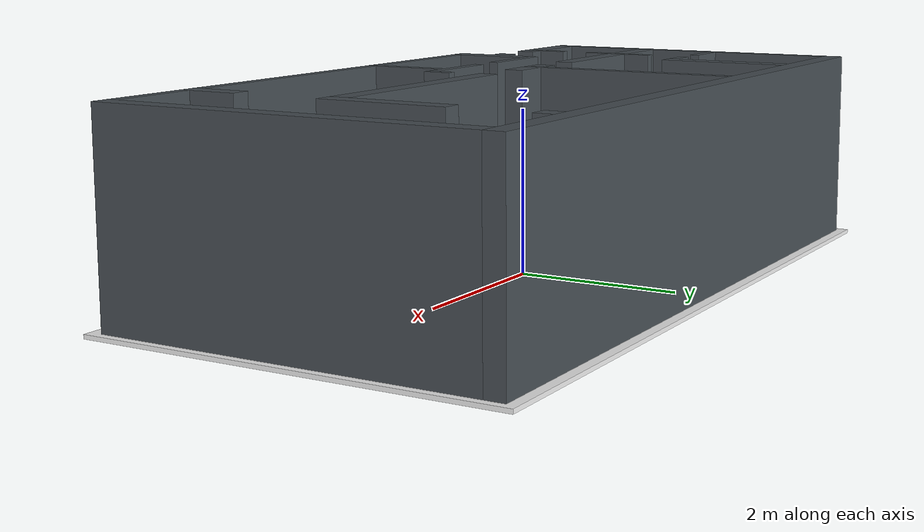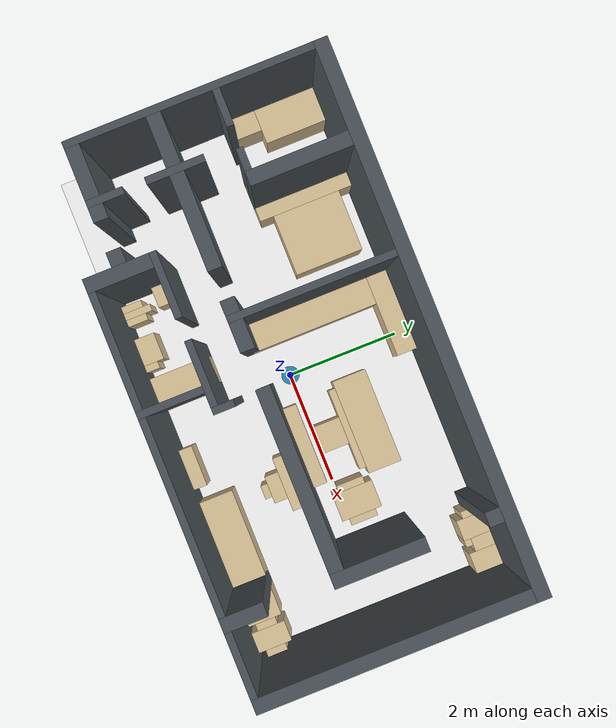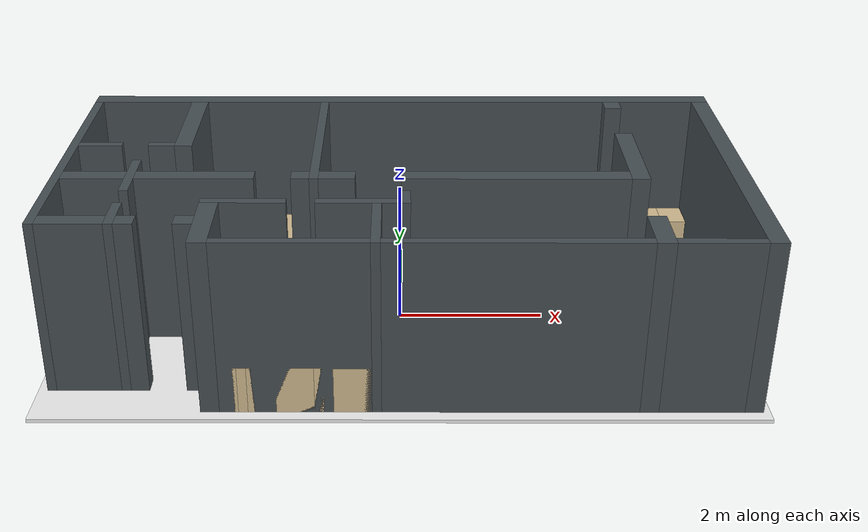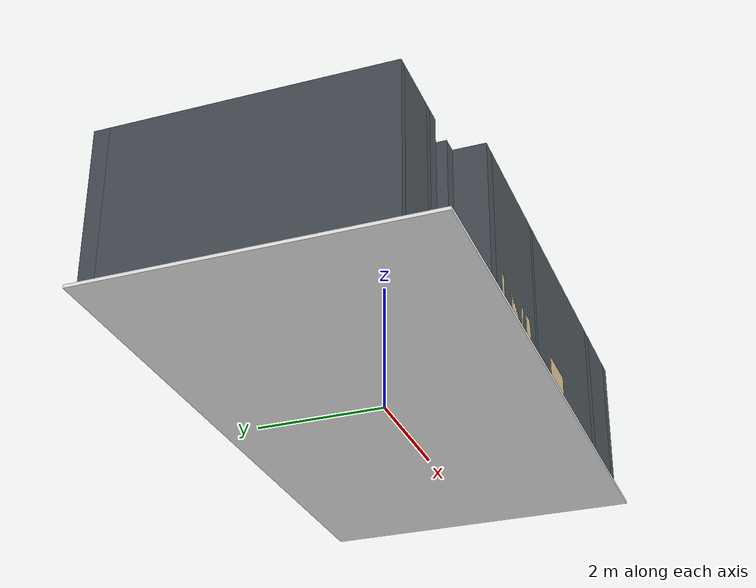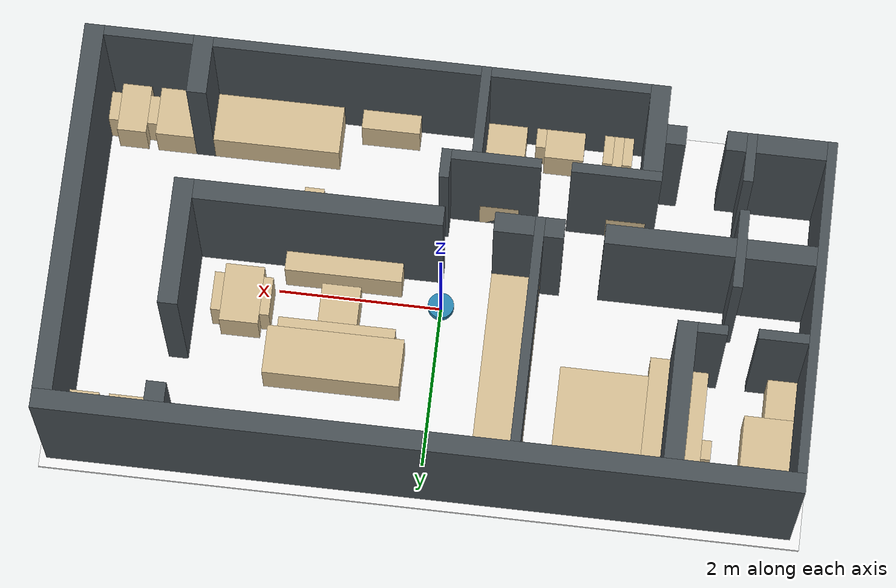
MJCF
<mujoco model='svg_scene_builder'>
  <compiler angle='radian'/>
  <option timestep='0.02' gravity='0 0 -9.81'/>
  <worldbody>
    <light name='sun' pos='0 0 8' dir='0 0 -1'/>
    <geom name='floor' type='box' pos='0 0 -0.0250' size='4.6650 2.5400 0.0250' rgba='0.95 0.95 0.95 1'/>
    <geom name='wall_000' type='box' pos='0.0150 2.3000 1.2000' size='4.5600 0.1200 1.2000' rgba='0.28 0.31 0.33 1'/>
    <geom name='wall_001' type='box' pos='-4.4850 0.1400 1.2000' size='0.0600 2.0400 1.2000' rgba='0.28 0.31 0.33 1'/>
    <geom name='wall_002' type='box' pos='-2.9850 1.3400 1.2000' size='0.1200 0.8400 1.2000' rgba='0.28 0.31 0.33 1'/>
    <geom name='wall_003' type='box' pos='-1.1250 0.8000 1.2000' size='0.0600 1.3800 1.2000' rgba='0.28 0.31 0.33 1'/>
    <geom name='wall_004' type='box' pos='3.1350 2.0600 1.2000' size='0.1200 0.1200 1.2000' rgba='0.28 0.31 0.33 1'/>
    <geom name='wall_005' type='box' pos='4.4550 -0.1000 1.2000' size='0.1200 2.2800 1.2000' rgba='0.28 0.31 0.33 1'/>
    <geom name='wall_006' type='box' pos='3.1350 0.2000 1.2000' size='0.1200 0.7800 1.2000' rgba='0.28 0.31 0.33 1'/>
    <geom name='wall_007' type='box' pos='-4.1250 0.5600 1.2000' size='0.3000 0.0600 1.2000' rgba='0.28 0.31 0.33 1'/>
    <geom name='wall_008' type='box' pos='-3.2850 0.5600 1.2000' size='0.1800 0.0600 1.2000' rgba='0.28 0.31 0.33 1'/>
    <geom name='wall_009' type='box' pos='-3.5250 -0.4600 1.2000' size='0.0600 0.4800 1.2000' rgba='0.28 0.31 0.33 1'/>
    <geom name='wall_010' type='box' pos='-4.0050 -0.4600 1.2000' size='0.4200 0.1200 1.2000' rgba='0.28 0.31 0.33 1'/>
    <geom name='wall_011' type='box' pos='-2.6850 -0.4600 1.2000' size='0.7800 0.1200 1.2000' rgba='0.28 0.31 0.33 1'/>
    <geom name='wall_012' type='box' pos='-1.3050 -0.4600 1.2000' size='0.1200 0.1200 1.2000' rgba='0.28 0.31 0.33 1'/>
    <geom name='wall_013' type='box' pos='-0.8250 -0.4600 1.2000' size='0.2400 0.1200 1.2000' rgba='0.28 0.31 0.33 1'/>
    <geom name='wall_014' type='box' pos='1.5150 -0.4600 1.2000' size='1.5000 0.1200 1.2000' rgba='0.28 0.31 0.33 1'/>
    <geom name='wall_015' type='box' pos='0.0750 -1.1200 1.2000' size='0.0600 0.1800 1.2000' rgba='0.28 0.31 0.33 1'/>
    <geom name='wall_016' type='box' pos='-1.9650 -1.2400 1.2000' size='0.5400 0.0600 1.2000' rgba='0.28 0.31 0.33 1'/>
    <geom name='wall_017' type='box' pos='-0.5250 -1.2400 1.2000' size='0.5400 0.0600 1.2000' rgba='0.28 0.31 0.33 1'/>
    <geom name='wall_018' type='box' pos='-3.5250 -1.6000 1.2000' size='0.0600 0.3000 1.2000' rgba='0.28 0.31 0.33 1'/>
    <geom name='wall_019' type='box' pos='-2.3850 -1.8400 1.2000' size='0.1200 0.5400 1.2000' rgba='0.28 0.31 0.33 1'/>
    <geom name='wall_020' type='box' pos='-0.2850 -1.8400 1.2000' size='0.0600 0.5400 1.2000' rgba='0.28 0.31 0.33 1'/>
    <geom name='wall_021' type='box' pos='-4.0050 -1.7800 1.2000' size='0.4200 0.1200 1.2000' rgba='0.28 0.31 0.33 1'/>
    <geom name='wall_022' type='box' pos='-3.3450 -1.7800 1.2000' size='0.1200 0.1200 1.2000' rgba='0.28 0.31 0.33 1'/>
    <geom name='wall_023' type='box' pos='-2.6250 -1.7800 1.2000' size='0.1200 0.1200 1.2000' rgba='0.28 0.31 0.33 1'/>
    <geom name='wall_024' type='box' pos='3.1350 -2.0200 1.2000' size='0.1200 0.3600 1.2000' rgba='0.28 0.31 0.33 1'/>
    <geom name='wall_025' type='box' pos='-1.3050 -2.3200 1.2000' size='0.9600 0.0600 1.2000' rgba='0.28 0.31 0.33 1'/>
    <geom name='wall_026' type='box' pos='1.3950 -2.3200 1.2000' size='1.6200 0.0600 1.2000' rgba='0.28 0.31 0.33 1'/>
    <geom name='wall_027' type='box' pos='3.7950 -2.3200 1.2000' size='0.5400 0.0600 1.2000' rgba='0.28 0.31 0.33 1'/>
    <geom name='furniture_000' type='box' pos='-4.1250 1.7000 0.3250' size='0.3000 0.6000 0.3250' rgba='0.83 0.74 0.57 1'/>
    <geom name='furniture_001' type='box' pos='-3.1650 1.4000 0.3250' size='0.1800 0.9000 0.3250' rgba='0.83 0.74 0.57 1'/>
    <geom name='furniture_002' type='box' pos='-0.4050 2.0600 0.3250' size='0.7800 0.2400 0.3250' rgba='0.83 0.74 0.57 1'/>
    <geom name='furniture_003' type='box' pos='3.5550 2.0000 0.3250' size='0.1800 0.3000 0.3250' rgba='0.83 0.74 0.57 1'/>
    <geom name='furniture_004' type='box' pos='4.1550 2.0000 0.3250' size='0.1800 0.3000 0.3250' rgba='0.83 0.74 0.57 1'/>
    <geom name='furniture_005' type='box' pos='-3.4050 2.0600 0.3250' size='0.0600 0.1200 0.3250' rgba='0.83 0.74 0.57 1'/>
    <geom name='furniture_006' type='box' pos='-2.8050 1.3400 0.3250' size='0.1800 0.8400 0.3250' rgba='0.83 0.74 0.57 1'/>
    <geom name='furniture_007' type='box' pos='3.3150 2.0000 0.3250' size='0.0600 0.1800 0.3250' rgba='0.83 0.74 0.57 1'/>
    <geom name='furniture_008' type='box' pos='3.8550 2.0000 0.3250' size='0.1200 0.1800 0.3250' rgba='0.83 0.74 0.57 1'/>
    <geom name='furniture_009' type='box' pos='4.3950 2.0000 0.3250' size='0.0600 0.1800 0.3250' rgba='0.83 0.74 0.57 1'/>
    <geom name='furniture_010' type='box' pos='-2.0850 1.3400 0.3250' size='0.5400 0.6000 0.3250' rgba='0.83 0.74 0.57 1'/>
    <geom name='furniture_011' type='box' pos='-0.8850 0.6800 0.3250' size='0.3000 1.1400 0.3250' rgba='0.83 0.74 0.57 1'/>
    <geom name='furniture_012' type='box' pos='3.7950 1.7600 0.3250' size='0.0600 0.0600 0.3250' rgba='0.83 0.74 0.57 1'/>
    <geom name='furniture_013' type='box' pos='-3.4050 1.5800 0.3250' size='0.0600 0.1200 0.3250' rgba='0.83 0.74 0.57 1'/>
    <geom name='furniture_014' type='box' pos='1.2150 0.9200 0.3250' size='0.8400 0.3000 0.3250' rgba='0.83 0.74 0.57 1'/>
    <geom name='furniture_015' type='box' pos='-4.2450 0.8600 0.3250' size='0.1800 0.2400 0.3250' rgba='0.83 0.74 0.57 1'/>
    <geom name='furniture_016' type='box' pos='1.2150 0.5600 0.3250' size='0.7200 0.0600 0.3250' rgba='0.83 0.74 0.57 1'/>
    <geom name='furniture_017' type='box' pos='2.4150 0.2600 0.3250' size='0.2400 0.3600 0.3250' rgba='0.83 0.74 0.57 1'/>
    <geom name='furniture_018' type='box' pos='1.2150 0.2600 0.3250' size='0.2400 0.2400 0.3250' rgba='0.83 0.74 0.57 1'/>
    <geom name='furniture_019' type='box' pos='2.1150 0.2600 0.3250' size='0.0600 0.2400 0.3250' rgba='0.83 0.74 0.57 1'/>
    <geom name='furniture_020' type='box' pos='2.7150 0.2600 0.3250' size='0.0600 0.2400 0.3250' rgba='0.83 0.74 0.57 1'/>
    <geom name='furniture_021' type='box' pos='1.2150 -0.2800 0.3250' size='0.7200 0.1800 0.3250' rgba='0.83 0.74 0.57 1'/>
    <geom name='furniture_022' type='box' pos='1.6950 -0.6400 0.3250' size='0.4800 0.1800 0.3250' rgba='0.83 0.74 0.57 1'/>
    <geom name='furniture_023' type='box' pos='1.6950 -0.9400 0.3250' size='0.2400 0.1200 0.3250' rgba='0.83 0.74 0.57 1'/>
    <geom name='furniture_024' type='box' pos='1.6950 -1.1200 0.3250' size='0.1200 0.0600 0.3250' rgba='0.83 0.74 0.57 1'/>
    <geom name='furniture_025' type='box' pos='-2.1450 -1.4200 0.3250' size='0.2400 0.2400 0.3250' rgba='0.83 0.74 0.57 1'/>
    <geom name='furniture_026' type='box' pos='-0.5850 -1.7800 0.3250' size='0.2400 0.6000 0.3250' rgba='0.83 0.74 0.57 1'/>
    <geom name='furniture_027' type='box' pos='2.2950 -1.9600 0.3250' size='0.8400 0.3000 0.3250' rgba='0.83 0.74 0.57 1'/>
    <geom name='furniture_028' type='box' pos='3.4950 -1.9600 0.3250' size='0.2400 0.3000 0.3250' rgba='0.83 0.74 0.57 1'/>
    <geom name='furniture_029' type='box' pos='4.0350 -1.9600 0.3250' size='0.1800 0.3000 0.3250' rgba='0.83 0.74 0.57 1'/>
    <geom name='furniture_030' type='box' pos='-1.9650 -2.0800 0.3250' size='0.0600 0.3000 0.3250' rgba='0.83 0.74 0.57 1'/>
    <geom name='furniture_031' type='box' pos='3.7950 -1.9600 0.3250' size='0.0600 0.1800 0.3250' rgba='0.83 0.74 0.57 1'/>
    <geom name='furniture_032' type='box' pos='4.2750 -1.9600 0.3250' size='0.0600 0.1800 0.3250' rgba='0.83 0.74 0.57 1'/>
    <geom name='furniture_033' type='box' pos='-2.0850 -2.1400 0.3250' size='0.0600 0.2400 0.3250' rgba='0.83 0.74 0.57 1'/>
    <geom name='furniture_034' type='box' pos='-1.8450 -2.1400 0.3250' size='0.0600 0.2400 0.3250' rgba='0.83 0.74 0.57 1'/>
    <geom name='furniture_035' type='box' pos='-1.3050 -2.1400 0.3250' size='0.2400 0.2400 0.3250' rgba='0.83 0.74 0.57 1'/>
    <geom name='furniture_036' type='box' pos='3.1950 -2.0200 0.3250' size='0.0600 0.1200 0.3250' rgba='0.83 0.74 0.57 1'/>
    <geom name='furniture_037' type='box' pos='-1.0050 -2.2000 0.3250' size='0.0600 0.1800 0.3250' rgba='0.83 0.74 0.57 1'/>
    <geom name='furniture_038' type='box' pos='0.8550 -2.2000 0.3250' size='0.3600 0.1800 0.3250' rgba='0.83 0.74 0.57 1'/>
    <body name='robot' pos='0 0 0.12'>
      <joint name='robot_x' type='slide' axis='1 0 0'/>
      <joint name='robot_y' type='slide' axis='0 1 0'/>
      <joint name='robot_yaw' type='hinge' axis='0 0 1'/>
      <geom name='robot_base' type='cylinder' pos='0 0 0' size='0.16 0.06' rgba='0.16 0.52 0.69 1'/>
      <site name='lidar_origin' pos='0 0 0.02' size='0.015'/>
    </body>
  </worldbody>
  <keyframe>
    <key name='start' qpos='0.0050 -0.0100 0.0000'/>
  </keyframe>
</mujoco>
